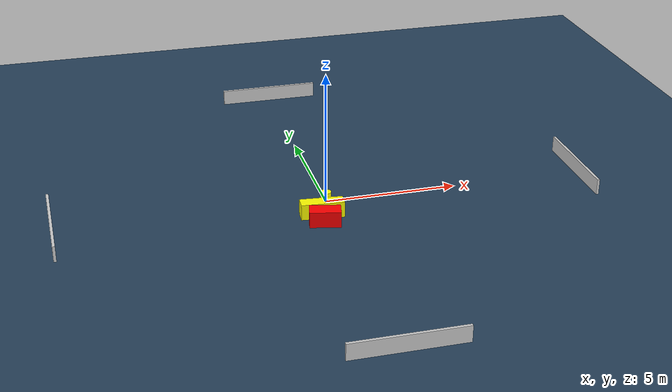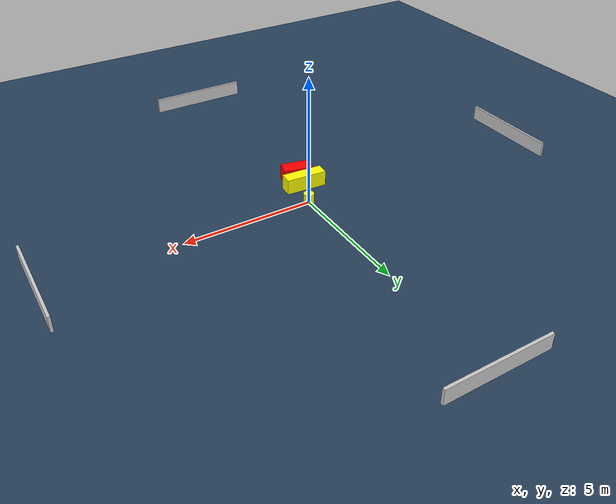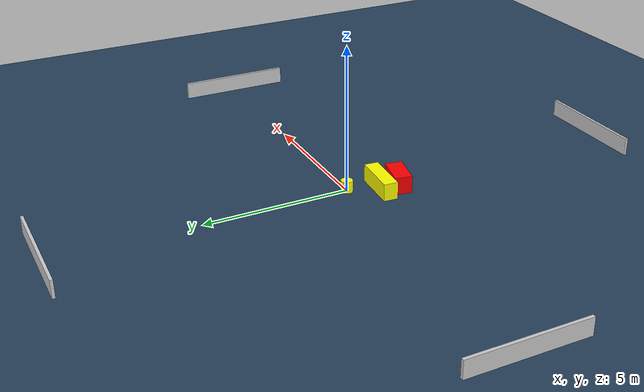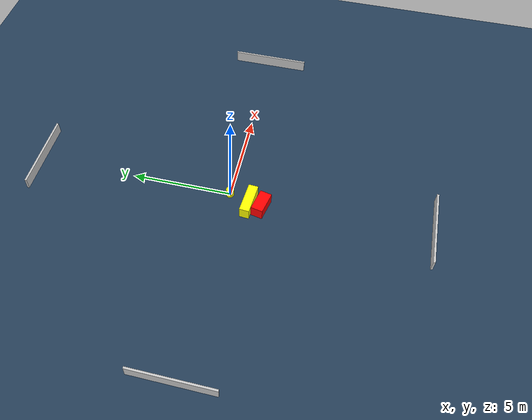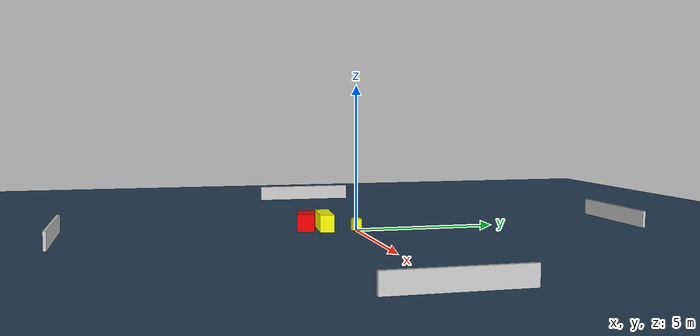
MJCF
<?xml version="1.0" ?>
<mujoco model="generated_environment">
  <option timestep="0.01" integrator="RK4" cone="elliptic"/>
  <default>
    <geom density="1"/>
  </default>
  <asset>
    <texture builtin="gradient" height="3072" name="skybox" rgb1="0.3 0.5 0.7" rgb2="0 0 0" type="skybox" width="512"/>
    <texture builtin="checker" height="300" name="groundplane" rgb1="0.2 0.3 0.4" rgb2="0.1 0.2 0.3" type="2d" width="300"/>
    <material name="groundplane" reflectance="0.2" texrepeat="5 5" texture="groundplane"/>
  </asset>
  <worldbody>
    <light dir="0 0 -1" directional="true" pos="0 0 1.5"/>
    <geom condim="3" friction="0.5 0.005 0.001" material="groundplane" name="floor" pos="0 0 0" size="0 0 0.05" type="plane"/>
    <body name="walls">
      <geom name="wall_1" condim="4" pos="-10.0 0.0 0.3" rgba="0.800000011920929 0.800000011920929 0.800000011920929 1.0" size="0.05 2.0 0.3" type="box"/>
      <geom name="wall_2" condim="4" pos="10.0 0.0 0.3" rgba="0.800000011920929 0.800000011920929 0.800000011920929 1.0" size="0.05 2.0 0.3" type="box"/>
      <geom name="wall_3" condim="4" pos="0.0 -10.0 0.3" rgba="0.800000011920929 0.800000011920929 0.800000011920929 1.0" size="2.0 0.05 0.3" type="box"/>
      <geom name="wall_4" condim="4" pos="0.0 10.0 0.3" rgba="0.800000011920929 0.800000011920929 0.800000011920929 1.0" size="2.0 0.05 0.3" type="box"/>
    </body>
    <body name="robot">
      <joint name="joint_x" type="slide" pos="0 0 0" axis="1 0 0"/>
      <joint name="joint_y" type="slide" pos="0 0 0" axis="0 1 0"/>
      <geom name="robot" type="cylinder" pos="0.0 0.0 0.2" size="0.2 0.2 0.0" mass="5.0" friction="1.0 0.005 0.0001" condim="4" rgba="1.0 1.0 0.0 1.0"/>
    </body>
    <body name="obstacle_1_movable">
      <geom name="obstacle_1_movable" condim="4" pos="-0.4130765368677596 -1.0416379587909752 0.3" euler="0 0 175.4813469662852" friction="0.0 0.005 0.001" rgba="1.0 1.0 0.0 1.0" size="0.7964499804883578 0.24537304012674224 0.3" type="box" mass="0.1"/>
      <joint type="free"/>
    </body>
    <body name="obstacle_2_static">
      <geom name="obstacle_2_static" condim="4" pos="-0.4611680886741474 -1.6756291175869362 0.3" euler="0 0 257.66276408396794" friction="0.0 0.005 0.001" rgba="1.0 0.0 0.0 1.0" size="0.29557547183556376 0.5712739706550078 0.3" type="box"/>
    </body>
  </worldbody>
  <actuator>
    <motor name="actuator_x" joint="joint_x" gear="1" ctrlrange="-1 1"/>
    <motor name="actuator_y" joint="joint_y" gear="1" ctrlrange="-1 1"/>
  </actuator>
</mujoco>
